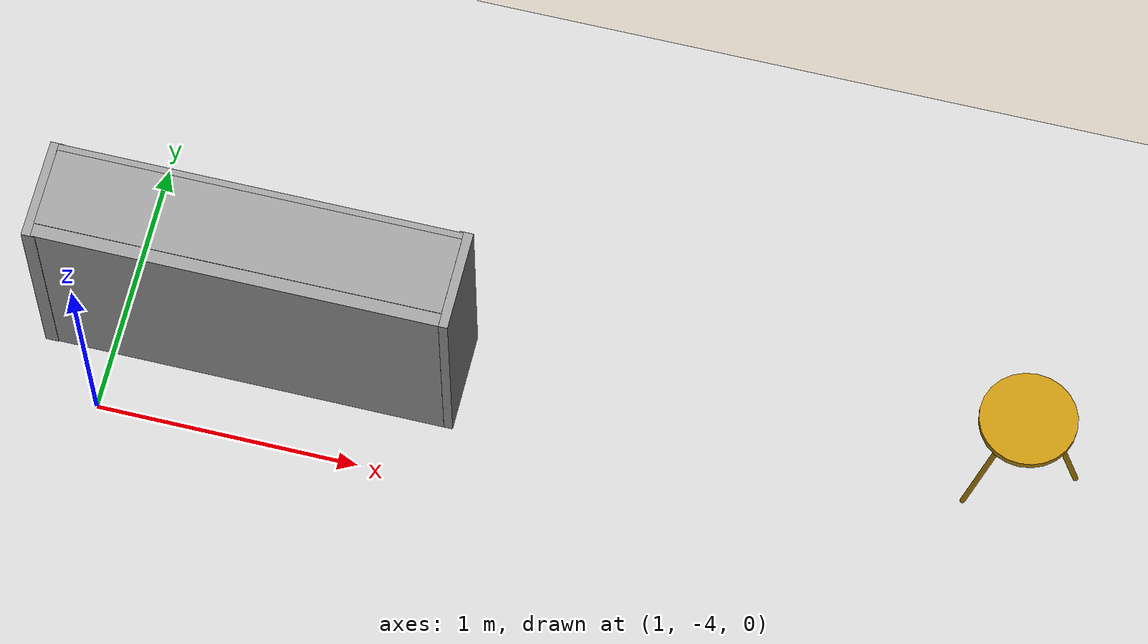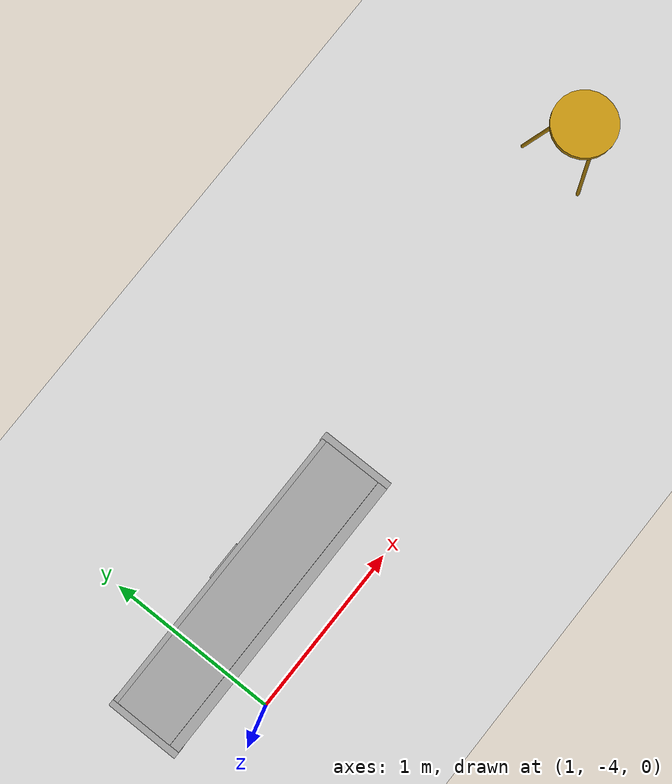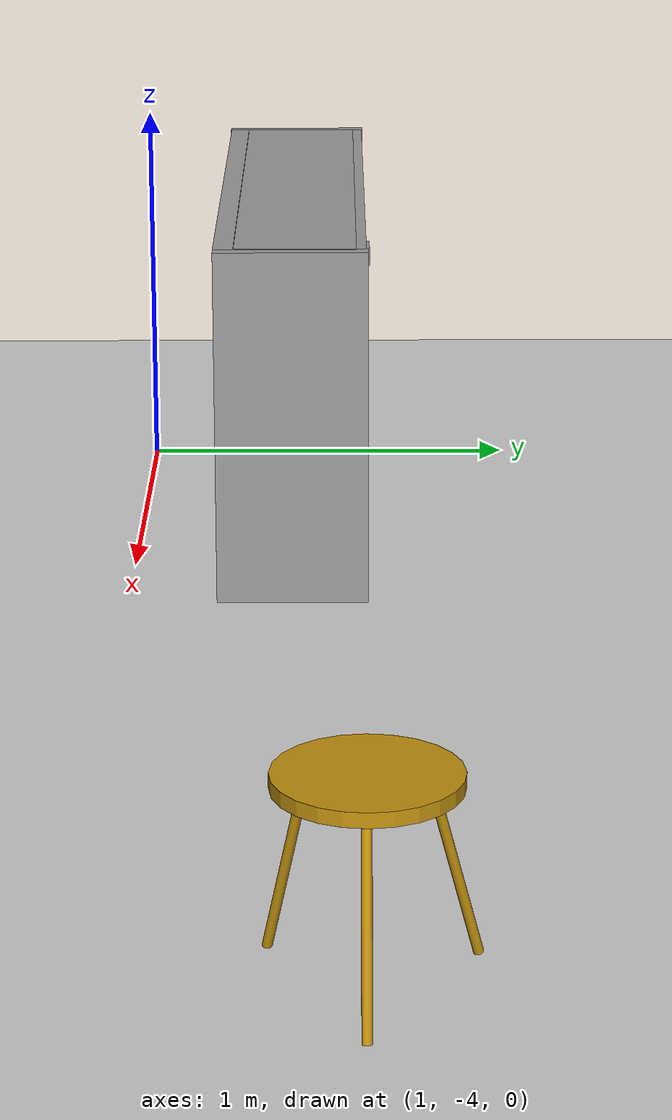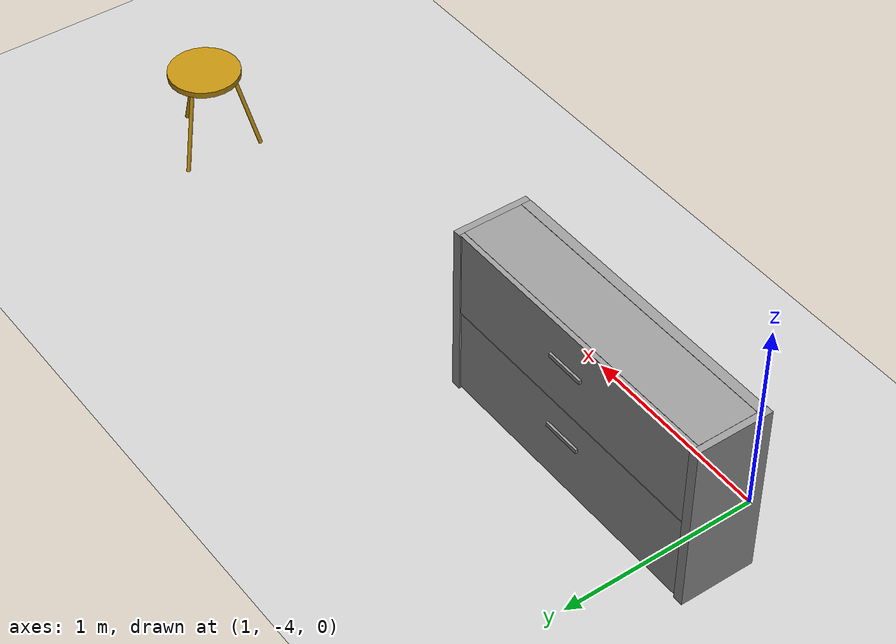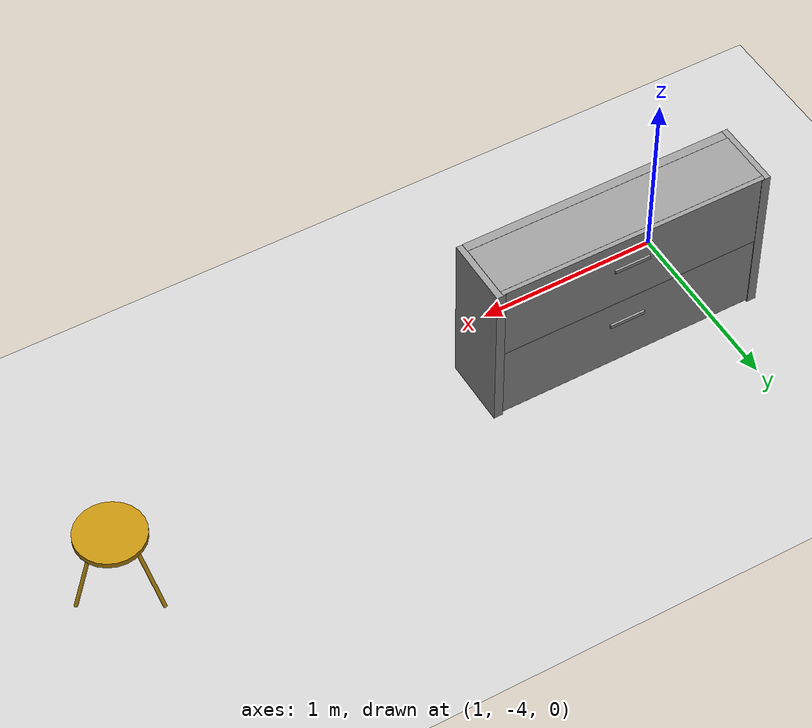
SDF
<sdf version="1.7">
 <world name="default">
  <model name="ground_plane">
   <static>1</static>
   <link name="link">
    <collision name="collision">
     <geometry><plane><normal>0 0 1</normal><size>100 100</size></plane></geometry>
     <surface>
      <contact><collide_bitmask>65535</collide_bitmask></contact>
      <friction><ode><mu>100</mu><mu2>50</mu2></ode></friction>
     </surface>
    </collision>
    <visual name="visual">
     <cast_shadows>0</cast_shadows>
     <geometry><plane><normal>0 0 1</normal><size>100 100</size></plane></geometry>
     <material>
      <script><uri>file://media/materials/scripts/gazebo.material</uri><name>Gazebo/Grey</name></script>
     </material>
    </visual>
   </link>
  </model>
  <model name="my_stool">
   <link name="link">
    <inertial>
     <mass>1</mass>
     <inertia><ixx>0.145833</ixx><ixy>0</ixy><ixz>0</ixz><iyy>0.145833</iyy><iyz>0</iyz><izz>0.125</izz></inertia>
    </inertial>
    <gravity>0</gravity>
    <visual name="visual">
     <geometry><cylinder><radius>0.18</radius><length>0.03</length></cylinder></geometry>
     <material>
      <script><name>Gazebo/Grey</name><uri>file://media/materials/scripts/gazebo.material</uri></script>
      <shader type="pixel"><normal_map>__default__</normal_map></shader>
      <ambient>0.75 0.56 0.05 1</ambient>
      <diffuse>0.75 0.56 0.05 1</diffuse>
      <specular>0.01 0.01 0.01 1</specular>
      <emissive>0 0 0 1</emissive>
     </material>
     <pose>0 0 0.42 0 -0 0</pose>
    </visual>
    <collision name="collision">
     <pose>0 0 0.42 0 -0 0</pose>
     <geometry><cylinder><radius>0.18</radius><length>0.03</length></cylinder></geometry>
     <surface>
      <friction>
       <ode><mu>1</mu><mu2>1</mu2><fdir1>0 0 0</fdir1><slip1>0</slip1><slip2>0</slip2></ode>
       <torsional>
        <coefficient>1</coefficient>
        <patch_radius>0</patch_radius>
        <surface_radius>0</surface_radius>
        <use_patch_radius>1</use_patch_radius>
        <ode><slip>0</slip></ode>
       </torsional>
      </friction>
      <bounce><restitution_coefficient>0</restitution_coefficient><threshold>1e+06</threshold></bounce>
      <contact>
       <collide_without_contact>0</collide_without_contact>
       <collide_without_contact_bitmask>1</collide_without_contact_bitmask>
       <collide_bitmask>1</collide_bitmask>
       <ode>
        <soft_cfm>0</soft_cfm>
        <soft_erp>0.2</soft_erp>
        <kp>1e+13</kp>
        <kd>1</kd>
        <max_vel>0.01</max_vel>
        <min_depth>0</min_depth>
       </ode>
       <bullet>
        <split_impulse>1</split_impulse>
        <split_impulse_penetration_threshold>-0.01</split_impulse_penetration_threshold>
        <soft_cfm>0</soft_cfm>
        <soft_erp>0.2</soft_erp>
        <kp>1e+13</kp>
        <kd>1</kd>
       </bullet>
      </contact>
     </surface>
    </collision>
   </link>
   <link name="link_clone">
    <inertial>
     <mass>1</mass>
     <inertia><ixx>0.145833</ixx><ixy>0</ixy><ixz>0</ixz><iyy>0.145833</iyy><iyz>0</iyz><izz>0.125</izz></inertia>
    </inertial>
    <pose>0.154365 -0.002852 0.007514 0 -0 0</pose>
    <gravity>0</gravity>
    <visual name="visual">
     <geometry><cylinder><radius>0.01</radius><length>0.42</length></cylinder></geometry>
     <material>
      <script><name>Gazebo/Grey</name><uri>file://media/materials/scripts/gazebo.material</uri></script>
      <shader type="pixel"><normal_map>__default__</normal_map></shader>
      <ambient>0.75 0.56 0.05 1</ambient>
      <diffuse>0.75 0.56 0.05 1</diffuse>
      <specular>0.01 0.01 0.01 1</specular>
      <emissive>0 0 0 1</emissive>
     </material>
     <pose>0 0 0.196 0 -0.3 0</pose>
    </visual>
    <collision name="collision">
     <pose>0 0 0.196 0 -0.3 0</pose>
     <geometry><cylinder><radius>0.01</radius><length>0.42</length></cylinder></geometry>
     <surface>
      <friction>
       <ode><mu>1</mu><mu2>1</mu2><fdir1>0 0 0</fdir1><slip1>0</slip1><slip2>0</slip2></ode>
       <torsional>
        <coefficient>1</coefficient>
        <patch_radius>0</patch_radius>
        <surface_radius>0</surface_radius>
        <use_patch_radius>1</use_patch_radius>
        <ode><slip>0</slip></ode>
       </torsional>
      </friction>
      <bounce><restitution_coefficient>0</restitution_coefficient><threshold>1e+06</threshold></bounce>
      <contact>
       <collide_without_contact>0</collide_without_contact>
       <collide_without_contact_bitmask>1</collide_without_contact_bitmask>
       <collide_bitmask>1</collide_bitmask>
       <ode>
        <soft_cfm>0</soft_cfm>
        <soft_erp>0.2</soft_erp>
        <kp>1e+13</kp>
        <kd>1</kd>
        <max_vel>0.01</max_vel>
        <min_depth>0</min_depth>
       </ode>
       <bullet>
        <split_impulse>1</split_impulse>
        <split_impulse_penetration_threshold>-0.01</split_impulse_penetration_threshold>
        <soft_cfm>0</soft_cfm>
        <soft_erp>0.2</soft_erp>
        <kp>1e+13</kp>
        <kd>1</kd>
       </bullet>
      </contact>
     </surface>
    </collision>
   </link>
   <link name="link_clone_clone">
    <inertial>
     <mass>1</mass>
     <inertia><ixx>0.145833</ixx><ixy>0</ixy><ixz>0</ixz><iyy>0.145833</iyy><iyz>0</iyz><izz>0.125</izz></inertia>
    </inertial>
    <pose>-0.108427 0.162559 0.007514 0 -0 2.21012</pose>
    <gravity>0</gravity>
    <visual name="visual">
     <geometry><cylinder><radius>0.01</radius><length>0.42</length></cylinder></geometry>
     <material>
      <script><name>Gazebo/Grey</name><uri>file://media/materials/scripts/gazebo.material</uri></script>
      <shader type="pixel"><normal_map>__default__</normal_map></shader>
      <ambient>0.75 0.56 0.05 1</ambient>
      <diffuse>0.75 0.56 0.05 1</diffuse>
      <specular>0.01 0.01 0.01 1</specular>
      <emissive>0 0 0 1</emissive>
     </material>
     <pose>0 0 0.196 0 -0.3 0</pose>
    </visual>
    <collision name="collision">
     <pose>0 0 0.14 0 -0.3 0</pose>
     <geometry><cylinder><radius>0.01</radius><length>0.42</length></cylinder></geometry>
     <surface>
      <friction>
       <ode><mu>1</mu><mu2>1</mu2><fdir1>0 0 0</fdir1><slip1>0</slip1><slip2>0</slip2></ode>
       <torsional>
        <coefficient>1</coefficient>
        <patch_radius>0</patch_radius>
        <surface_radius>0</surface_radius>
        <use_patch_radius>1</use_patch_radius>
        <ode><slip>0</slip></ode>
       </torsional>
      </friction>
      <bounce><restitution_coefficient>0</restitution_coefficient><threshold>1e+06</threshold></bounce>
      <contact>
       <collide_without_contact>0</collide_without_contact>
       <collide_without_contact_bitmask>1</collide_without_contact_bitmask>
       <collide_bitmask>1</collide_bitmask>
       <ode>
        <soft_cfm>0</soft_cfm>
        <soft_erp>0.2</soft_erp>
        <kp>1e+13</kp>
        <kd>1</kd>
        <max_vel>0.01</max_vel>
        <min_depth>0</min_depth>
       </ode>
       <bullet>
        <split_impulse>1</split_impulse>
        <split_impulse_penetration_threshold>-0.01</split_impulse_penetration_threshold>
        <soft_cfm>0</soft_cfm>
        <soft_erp>0.2</soft_erp>
        <kp>1e+13</kp>
        <kd>1</kd>
       </bullet>
      </contact>
     </surface>
    </collision>
   </link>
   <link name="link_clone_clone_clone">
    <inertial>
     <mass>1</mass>
     <inertia><ixx>0.145833</ixx><ixy>0</ixy><ixz>0</ixz><iyy>0.145833</iyy><iyz>0</iyz><izz>0.125</izz></inertia>
    </inertial>
    <pose>-0.123134 -0.149725 0.010416 0 0 -2.45292</pose>
    <visual name="visual">
     <geometry><cylinder><radius>0.01</radius><length>0.42</length></cylinder></geometry>
     <material>
      <script><name>Gazebo/Grey</name><uri>file://media/materials/scripts/gazebo.material</uri></script>
      <shader type="pixel"><normal_map>__default__</normal_map></shader>
      <ambient>0.75 0.56 0.05 1</ambient>
      <diffuse>0.75 0.56 0.05 1</diffuse>
      <specular>0.01 0.01 0.01 1</specular>
      <emissive>0 0 0 1</emissive>
     </material>
     <pose>0 0 0.196 0 -0.3 0</pose>
    </visual>
    <collision name="collision">
     <pose>0 0 0.196 0 -0.3 0</pose>
     <geometry><cylinder><radius>0.01</radius><length>0.42</length></cylinder></geometry>
     <surface>
      <friction>
       <ode><mu>1</mu><mu2>1</mu2><fdir1>0 0 0</fdir1><slip1>0</slip1><slip2>0</slip2></ode>
       <torsional>
        <coefficient>1</coefficient>
        <patch_radius>0</patch_radius>
        <surface_radius>0</surface_radius>
        <use_patch_radius>1</use_patch_radius>
        <ode><slip>0</slip></ode>
       </torsional>
      </friction>
      <bounce><restitution_coefficient>0</restitution_coefficient><threshold>1e+06</threshold></bounce>
      <contact>
       <collide_without_contact>0</collide_without_contact>
       <collide_without_contact_bitmask>1</collide_without_contact_bitmask>
       <collide_bitmask>1</collide_bitmask>
       <ode>
        <soft_cfm>0</soft_cfm>
        <soft_erp>0.2</soft_erp>
        <kp>1e+13</kp>
        <kd>1</kd>
        <max_vel>0.01</max_vel>
        <min_depth>0</min_depth>
       </ode>
       <bullet>
        <split_impulse>1</split_impulse>
        <split_impulse_penetration_threshold>-0.01</split_impulse_penetration_threshold>
        <soft_cfm>0</soft_cfm>
        <soft_erp>0.2</soft_erp>
        <kp>1e+13</kp>
        <kd>1</kd>
       </bullet>
      </contact>
     </surface>
    </collision>
   </link>
   <static>1</static>
   <pose>4.36955 -3.42221 0 0 -0 0</pose>
  </model>
  <model name="my_shoe_rack">
   <link name="link">
    <inertial>
     <mass>1</mass>
     <inertia>
      <ixx>0.166667</ixx>
      <ixy>0</ixy>
      <ixz>0</ixz>
      <iyy>0.166667</iyy>
      <iyz>0</iyz>
      <izz>0.166667</izz>
     </inertia>
    </inertial>
    <pose>0.010503 -0.018536 0.006993 0 -0 0</pose>
    <visual name="visual">
     <geometry><box><size>0.05 1.5 0.9</size></box></geometry>
     <material>
      <script><name>Gazebo/Grey</name><uri>file://media/materials/scripts/gazebo.material</uri></script>
      <shader type="pixel"><normal_map>__default__</normal_map></shader>
      <ambient>0.9 0.9 0.9 1</ambient>
      <diffuse>0.9 0.9 0.9 1</diffuse>
      <specular>0.01 0.01 0.01 1</specular>
      <emissive>0 0 0 1</emissive>
     </material>
     <pose>0 0 0.45 0 -0 0</pose>
    </visual>
    <collision name="collision">
     <pose>0 0 0.45 0 -0 0</pose>
     <geometry><box><size>0.05 1.5 0.9</size></box></geometry>
     <surface>
      <friction>
       <ode><mu>1</mu><mu2>1</mu2><fdir1>0 0 0</fdir1><slip1>0</slip1><slip2>0</slip2></ode>
       <torsional>
        <coefficient>1</coefficient>
        <patch_radius>0</patch_radius>
        <surface_radius>0</surface_radius>
        <use_patch_radius>1</use_patch_radius>
        <ode><slip>0</slip></ode>
       </torsional>
      </friction>
      <bounce><restitution_coefficient>0</restitution_coefficient><threshold>1e+06</threshold></bounce>
      <contact>
       <collide_without_contact>0</collide_without_contact>
       <collide_without_contact_bitmask>1</collide_without_contact_bitmask>
       <collide_bitmask>1</collide_bitmask>
       <ode>
        <soft_cfm>0</soft_cfm>
        <soft_erp>0.2</soft_erp>
        <kp>1e+13</kp>
        <kd>1</kd>
        <max_vel>0.01</max_vel>
        <min_depth>0</min_depth>
       </ode>
       <bullet>
        <split_impulse>1</split_impulse>
        <split_impulse_penetration_threshold>-0.01</split_impulse_penetration_threshold>
        <soft_cfm>0</soft_cfm>
        <soft_erp>0.2</soft_erp>
        <kp>1e+13</kp>
        <kd>1</kd>
       </bullet>
      </contact>
     </surface>
    </collision>
   </link>
   <link name="link_0">
    <inertial>
     <mass>1</mass>
     <inertia>
      <ixx>0.166667</ixx>
      <ixy>0</ixy>
      <ixz>0</ixz>
      <iyy>0.166667</iyy>
      <iyz>0</iyz>
      <izz>0.166667</izz>
     </inertia>
    </inertial>
    <pose>0.371318 -0.032823 0.721817 0 -0 0</pose>
    <gravity>0</gravity>
    <visual name="visual">
     <geometry><box><size>0.012 0.2 0.02</size></box></geometry>
     <material>
      <lighting>1</lighting>
      <script><uri>file://media/materials/scripts/gazebo.material</uri><name>Gazebo/Grey</name></script>
      <shader type="pixel"><normal_map>__default__</normal_map></shader>
      <ambient>0.2 0.2 0.2 0</ambient>
      <diffuse>0.2 0.2 0.2 1</diffuse>
      <specular>0.01 0.01 0.01 1</specular>
      <emissive>0 0 0 1</emissive>
     </material>
    </visual>
    <collision name="collision">
     <geometry><box><size>0.012 0.2 0.02</size></box></geometry>
     <surface>
      <friction>
       <ode><mu>1</mu><mu2>1</mu2><fdir1>0 0 0</fdir1><slip1>0</slip1><slip2>0</slip2></ode>
       <torsional>
        <coefficient>1</coefficient>
        <patch_radius>0</patch_radius>
        <surface_radius>0</surface_radius>
        <use_patch_radius>1</use_patch_radius>
        <ode><slip>0</slip></ode>
       </torsional>
      </friction>
      <bounce><restitution_coefficient>0</restitution_coefficient><threshold>1e+06</threshold></bounce>
      <contact>
       <collide_without_contact>0</collide_without_contact>
       <collide_without_contact_bitmask>1</collide_without_contact_bitmask>
       <collide_bitmask>1</collide_bitmask>
       <ode>
        <soft_cfm>0</soft_cfm>
        <soft_erp>0.2</soft_erp>
        <kp>1e+13</kp>
        <kd>1</kd>
        <max_vel>0.01</max_vel>
        <min_depth>0</min_depth>
       </ode>
       <bullet>
        <split_impulse>1</split_impulse>
        <split_impulse_penetration_threshold>-0.01</split_impulse_penetration_threshold>
        <soft_cfm>0</soft_cfm>
        <soft_erp>0.2</soft_erp>
        <kp>1e+13</kp>
        <kd>1</kd>
       </bullet>
      </contact>
     </surface>
    </collision>
   </link>
   <link name="link_0_clone">
    <inertial>
     <mass>1</mass>
     <inertia>
      <ixx>0.166667</ixx>
      <ixy>0</ixy>
      <ixz>0</ixz>
      <iyy>0.166667</iyy>
      <iyz>0</iyz>
      <izz>0.166667</izz>
     </inertia>
    </inertial>
    <pose>0.366781 -0.03449 0.310512 0 -0 0</pose>
    <gravity>0</gravity>
    <visual name="visual">
     <geometry><box><size>0.012 0.2 0.02</size></box></geometry>
     <material>
      <lighting>1</lighting>
      <script><uri>file://media/materials/scripts/gazebo.material</uri><name>Gazebo/Grey</name></script>
      <shader type="pixel"><normal_map>__default__</normal_map></shader>
      <ambient>0.2 0.2 0.2 0</ambient>
      <diffuse>0.2 0.2 0.2 1</diffuse>
      <specular>0.01 0.01 0.01 1</specular>
      <emissive>0 0 0 1</emissive>
     </material>
    </visual>
    <collision name="collision">
     <geometry><box><size>0.012 0.2 0.02</size></box></geometry>
     <surface>
      <friction>
       <ode><mu>1</mu><mu2>1</mu2><fdir1>0 0 0</fdir1><slip1>0</slip1><slip2>0</slip2></ode>
       <torsional>
        <coefficient>1</coefficient>
        <patch_radius>0</patch_radius>
        <surface_radius>0</surface_radius>
        <use_patch_radius>1</use_patch_radius>
        <ode><slip>0</slip></ode>
       </torsional>
      </friction>
      <bounce><restitution_coefficient>0</restitution_coefficient><threshold>1e+06</threshold></bounce>
      <contact>
       <collide_without_contact>0</collide_without_contact>
       <collide_without_contact_bitmask>1</collide_without_contact_bitmask>
       <collide_bitmask>1</collide_bitmask>
       <ode>
        <soft_cfm>0</soft_cfm>
        <soft_erp>0.2</soft_erp>
        <kp>1e+13</kp>
        <kd>1</kd>
        <max_vel>0.01</max_vel>
        <min_depth>0</min_depth>
       </ode>
       <bullet>
        <split_impulse>1</split_impulse>
        <split_impulse_penetration_threshold>-0.01</split_impulse_penetration_threshold>
        <soft_cfm>0</soft_cfm>
        <soft_erp>0.2</soft_erp>
        <kp>1e+13</kp>
        <kd>1</kd>
       </bullet>
      </contact>
     </surface>
    </collision>
   </link>
   <link name="link_clone">
    <inertial>
     <mass>1</mass>
     <inertia>
      <ixx>0.166667</ixx>
      <ixy>0</ixy>
      <ixz>0</ixz>
      <iyy>0.166667</iyy>
      <iyz>0</iyz>
      <izz>0.166667</izz>
     </inertia>
    </inertial>
    <pose>0.199559 -0.011174 -1.077 1.1e-05 -0.001065 2e-06</pose>
    <visual name="visual">
     <geometry><box><size>0.3 1.5 0.04</size></box></geometry>
     <material>
      <script><name>Gazebo/Grey</name><uri>file://media/materials/scripts/gazebo.material</uri></script>
      <shader type="pixel"><normal_map>__default__</normal_map></shader>
      <ambient>0.9 0.9 0.9 1</ambient>
      <diffuse>0.9 0.9 0.9 1</diffuse>
      <specular>0.01 0.01 0.01 1</specular>
      <emissive>0 0 0 1</emissive>
     </material>
     <pose>0 0 1.1 0 -0 0</pose>
    </visual>
    <collision name="collision">
     <pose>0 0 1.1 0 -0 0</pose>
     <geometry><box><size>0.3 1.5 0.04</size></box></geometry>
     <surface>
      <friction>
       <ode><mu>1</mu><mu2>1</mu2><fdir1>0 0 0</fdir1><slip1>0</slip1><slip2>0</slip2></ode>
       <torsional>
        <coefficient>1</coefficient>
        <patch_radius>0</patch_radius>
        <surface_radius>0</surface_radius>
        <use_patch_radius>1</use_patch_radius>
        <ode><slip>0</slip></ode>
       </torsional>
      </friction>
      <bounce><restitution_coefficient>0</restitution_coefficient><threshold>1e+06</threshold></bounce>
      <contact>
       <collide_without_contact>0</collide_without_contact>
       <collide_without_contact_bitmask>1</collide_without_contact_bitmask>
       <collide_bitmask>1</collide_bitmask>
       <ode>
        <soft_cfm>0</soft_cfm>
        <soft_erp>0.2</soft_erp>
        <kp>1e+13</kp>
        <kd>1</kd>
        <max_vel>0.01</max_vel>
        <min_depth>0</min_depth>
       </ode>
       <bullet>
        <split_impulse>1</split_impulse>
        <split_impulse_penetration_threshold>-0.01</split_impulse_penetration_threshold>
        <soft_cfm>0</soft_cfm>
        <soft_erp>0.2</soft_erp>
        <kp>1e+13</kp>
        <kd>1</kd>
       </bullet>
      </contact>
     </surface>
    </collision>
   </link>
   <link name="link_clone_0">
    <inertial>
     <mass>1</mass>
     <inertia>
      <ixx>0.166667</ixx>
      <ixy>0</ixy>
      <ixz>0</ixz>
      <iyy>0.166667</iyy>
      <iyz>0</iyz>
      <izz>0.166667</izz>
     </inertia>
    </inertial>
    <pose>0.1762 -0.777121 0.006003 0 -0 0</pose>
    <gravity>0</gravity>
    <visual name="visual">
     <geometry><box><size>0.05 0.38 0.9</size></box></geometry>
     <material>
      <script><name>Gazebo/Grey</name><uri>file://media/materials/scripts/gazebo.material</uri></script>
      <shader type="pixel"><normal_map>__default__</normal_map></shader>
      <ambient>0.9 0.9 0.9 1</ambient>
      <diffuse>0.9 0.9 0.9 1</diffuse>
      <specular>0.01 0.01 0.01 1</specular>
      <emissive>0 0 0 1</emissive>
     </material>
     <pose>0 0 0.45 0 -0 1.5707</pose>
    </visual>
    <collision name="collision">
     <pose>0 0 0.45 0 -0 1.5707</pose>
     <geometry><box><size>0.05 0.38 0.9</size></box></geometry>
     <surface>
      <friction>
       <ode><mu>1</mu><mu2>1</mu2><fdir1>0 0 0</fdir1><slip1>0</slip1><slip2>0</slip2></ode>
       <torsional>
        <coefficient>1</coefficient>
        <patch_radius>0</patch_radius>
        <surface_radius>0</surface_radius>
        <use_patch_radius>1</use_patch_radius>
        <ode><slip>0</slip></ode>
       </torsional>
      </friction>
      <bounce><restitution_coefficient>0</restitution_coefficient><threshold>1e+06</threshold></bounce>
      <contact>
       <collide_without_contact>0</collide_without_contact>
       <collide_without_contact_bitmask>1</collide_without_contact_bitmask>
       <collide_bitmask>1</collide_bitmask>
       <ode>
        <soft_cfm>0</soft_cfm>
        <soft_erp>0.2</soft_erp>
        <kp>1e+13</kp>
        <kd>1</kd>
        <max_vel>0.01</max_vel>
        <min_depth>0</min_depth>
       </ode>
       <bullet>
        <split_impulse>1</split_impulse>
        <split_impulse_penetration_threshold>-0.01</split_impulse_penetration_threshold>
        <soft_cfm>0</soft_cfm>
        <soft_erp>0.2</soft_erp>
        <kp>1e+13</kp>
        <kd>1</kd>
       </bullet>
      </contact>
     </surface>
    </collision>
   </link>
   <link name="link_clone_0_clone">
    <inertial>
     <mass>1</mass>
     <inertia>
      <ixx>0.166667</ixx>
      <ixy>0</ixy>
      <ixz>0</ixz>
      <iyy>0.166667</iyy>
      <iyz>0</iyz>
      <izz>0.166667</izz>
     </inertia>
    </inertial>
    <pose>0.173251 0.740189 0.006003 0 -0 0</pose>
    <gravity>0</gravity>
    <visual name="visual">
     <geometry><box><size>0.05 0.38 0.9</size></box></geometry>
     <material>
      <script><name>Gazebo/Grey</name><uri>file://media/materials/scripts/gazebo.material</uri></script>
      <shader type="pixel"><normal_map>__default__</normal_map></shader>
      <ambient>0.9 0.9 0.9 1</ambient>
      <diffuse>0.9 0.9 0.9 1</diffuse>
      <specular>0.01 0.01 0.01 1</specular>
      <emissive>0 0 0 1</emissive>
     </material>
     <pose>0 0 0.45 0 -0 1.5707</pose>
    </visual>
    <collision name="collision">
     <pose>0 0 0.45 0 -0 1.5707</pose>
     <geometry><box><size>0.05 0.38 0.9</size></box></geometry>
     <surface>
      <friction>
       <ode><mu>1</mu><mu2>1</mu2><fdir1>0 0 0</fdir1><slip1>0</slip1><slip2>0</slip2></ode>
       <torsional>
        <coefficient>1</coefficient>
        <patch_radius>0</patch_radius>
        <surface_radius>0</surface_radius>
        <use_patch_radius>1</use_patch_radius>
        <ode><slip>0</slip></ode>
       </torsional>
      </friction>
      <bounce><restitution_coefficient>0</restitution_coefficient><threshold>1e+06</threshold></bounce>
      <contact>
       <collide_without_contact>0</collide_without_contact>
       <collide_without_contact_bitmask>1</collide_without_contact_bitmask>
       <collide_bitmask>1</collide_bitmask>
       <ode>
        <soft_cfm>0</soft_cfm>
        <soft_erp>0.2</soft_erp>
        <kp>1e+13</kp>
        <kd>1</kd>
        <max_vel>0.01</max_vel>
        <min_depth>0</min_depth>
       </ode>
       <bullet>
        <split_impulse>1</split_impulse>
        <split_impulse_penetration_threshold>-0.01</split_impulse_penetration_threshold>
        <soft_cfm>0</soft_cfm>
        <soft_erp>0.2</soft_erp>
        <kp>1e+13</kp>
        <kd>1</kd>
       </bullet>
      </contact>
     </surface>
    </collision>
   </link>
   <link name="link_clone_1">
    <inertial>
     <mass>1</mass>
     <inertia>
      <ixx>0.166667</ixx>
      <ixy>0</ixy>
      <ixz>0</ixz>
      <iyy>0.166667</iyy>
      <iyz>0</iyz>
      <izz>0.166667</izz>
     </inertia>
    </inertial>
    <pose>0.333404 -0.016712 -0.211075 0 -0 0</pose>
    <gravity>0</gravity>
    <visual name="visual">
     <geometry><box><size>0.05 1.5 0.44</size></box></geometry>
     <material>
      <script><name>Gazebo/Grey</name><uri>file://media/materials/scripts/gazebo.material</uri></script>
      <shader type="pixel"><normal_map>__default__</normal_map></shader>
      <ambient>0.9 0.9 0.9 1</ambient>
      <diffuse>0.9 0.9 0.9 1</diffuse>
      <specular>0.01 0.01 0.01 1</specular>
      <emissive>0 0 0 1</emissive>
     </material>
     <pose>0 0 0.45 0 -0 0</pose>
    </visual>
    <collision name="collision">
     <pose>0 0 0.45 0 -0 0</pose>
     <geometry><box><size>0.05 1.5 0.44</size></box></geometry>
     <surface>
      <friction>
       <ode><mu>1</mu><mu2>1</mu2><fdir1>0 0 0</fdir1><slip1>0</slip1><slip2>0</slip2></ode>
       <torsional>
        <coefficient>1</coefficient>
        <patch_radius>0</patch_radius>
        <surface_radius>0</surface_radius>
        <use_patch_radius>1</use_patch_radius>
        <ode><slip>0</slip></ode>
       </torsional>
      </friction>
      <bounce><restitution_coefficient>0</restitution_coefficient><threshold>1e+06</threshold></bounce>
      <contact>
       <collide_without_contact>0</collide_without_contact>
       <collide_without_contact_bitmask>1</collide_without_contact_bitmask>
       <collide_bitmask>1</collide_bitmask>
       <ode>
        <soft_cfm>0</soft_cfm>
        <soft_erp>0.2</soft_erp>
        <kp>1e+13</kp>
        <kd>1</kd>
        <max_vel>0.01</max_vel>
        <min_depth>0</min_depth>
       </ode>
       <bullet>
        <split_impulse>1</split_impulse>
        <split_impulse_penetration_threshold>-0.01</split_impulse_penetration_threshold>
        <soft_cfm>0</soft_cfm>
        <soft_erp>0.2</soft_erp>
        <kp>1e+13</kp>
        <kd>1</kd>
       </bullet>
      </contact>
     </surface>
    </collision>
   </link>
   <link name="link_clone_1_clone">
    <inertial>
     <mass>1</mass>
     <inertia>
      <ixx>0.166667</ixx>
      <ixy>0</ixy>
      <ixz>0</ixz>
      <iyy>0.166667</iyy>
      <iyz>0</iyz>
      <izz>0.166667</izz>
     </inertia>
    </inertial>
    <pose>0.336083 -0.01614 0.236525 0 -0 0</pose>
    <gravity>0</gravity>
    <visual name="visual">
     <geometry><box><size>0.05 1.5 0.44</size></box></geometry>
     <material>
      <script><name>Gazebo/Grey</name><uri>file://media/materials/scripts/gazebo.material</uri></script>
      <shader type="pixel"><normal_map>__default__</normal_map></shader>
      <ambient>0.9 0.9 0.9 1</ambient>
      <diffuse>0.9 0.9 0.9 1</diffuse>
      <specular>0.01 0.01 0.01 1</specular>
      <emissive>0 0 0 1</emissive>
     </material>
     <pose>0 0 0.45 0 -0 0</pose>
    </visual>
    <collision name="collision">
     <pose>0 0 0.45 0 -0 0</pose>
     <geometry><box><size>0.05 1.5 0.44</size></box></geometry>
     <surface>
      <friction>
       <ode><mu>1</mu><mu2>1</mu2><fdir1>0 0 0</fdir1><slip1>0</slip1><slip2>0</slip2></ode>
       <torsional>
        <coefficient>1</coefficient>
        <patch_radius>0</patch_radius>
        <surface_radius>0</surface_radius>
        <use_patch_radius>1</use_patch_radius>
        <ode><slip>0</slip></ode>
       </torsional>
      </friction>
      <bounce><restitution_coefficient>0</restitution_coefficient><threshold>1e+06</threshold></bounce>
      <contact>
       <collide_without_contact>0</collide_without_contact>
       <collide_without_contact_bitmask>1</collide_without_contact_bitmask>
       <collide_bitmask>1</collide_bitmask>
       <ode>
        <soft_cfm>0</soft_cfm>
        <soft_erp>0.2</soft_erp>
        <kp>1e+13</kp>
        <kd>1</kd>
        <max_vel>0.01</max_vel>
        <min_depth>0</min_depth>
       </ode>
       <bullet>
        <split_impulse>1</split_impulse>
        <split_impulse_penetration_threshold>-0.01</split_impulse_penetration_threshold>
        <soft_cfm>0</soft_cfm>
        <soft_erp>0.2</soft_erp>
        <kp>1e+13</kp>
        <kd>1</kd>
       </bullet>
      </contact>
     </surface>
    </collision>
   </link>
   <link name="link_clone_clone_0">
    <inertial>
     <mass>1</mass>
     <inertia>
      <ixx>0.166667</ixx>
      <ixy>0</ixy>
      <ixz>0</ixz>
      <iyy>0.166667</iyy>
      <iyz>0</iyz>
      <izz>0.166667</izz>
     </inertia>
    </inertial>
    <pose>0.186363 -0.017339 0.93719 2.2e-05 0.000604 0.000114</pose>
    <gravity>0</gravity>
    <visual name="visual">
     <geometry><box><size>0.3 1.5 0.04</size></box></geometry>
     <material>
      <script><name>Gazebo/Grey</name><uri>file://media/materials/scripts/gazebo.material</uri></script>
      <shader type="pixel"><normal_map>__default__</normal_map></shader>
      <ambient>0.9 0.9 0.9 1</ambient>
      <diffuse>0.9 0.9 0.9 1</diffuse>
      <specular>0.01 0.01 0.01 1</specular>
      <emissive>0 0 0 1</emissive>
     </material>
     <pose>0 0 -0.05 0 -0 0</pose>
    </visual>
    <collision name="collision">
     <pose>0 0 -0.05 0 -0 0</pose>
     <geometry><box><size>0.3 1.5 0.04</size></box></geometry>
     <surface>
      <friction>
       <ode><mu>1</mu><mu2>1</mu2><fdir1>0 0 0</fdir1><slip1>0</slip1><slip2>0</slip2></ode>
       <torsional>
        <coefficient>1</coefficient>
        <patch_radius>0</patch_radius>
        <surface_radius>0</surface_radius>
        <use_patch_radius>1</use_patch_radius>
        <ode><slip>0</slip></ode>
       </torsional>
      </friction>
      <bounce><restitution_coefficient>0</restitution_coefficient><threshold>1e+06</threshold></bounce>
      <contact>
       <collide_without_contact>0</collide_without_contact>
       <collide_without_contact_bitmask>1</collide_without_contact_bitmask>
       <collide_bitmask>1</collide_bitmask>
       <ode>
        <soft_cfm>0</soft_cfm>
        <soft_erp>0.2</soft_erp>
        <kp>1e+13</kp>
        <kd>1</kd>
        <max_vel>0.01</max_vel>
        <min_depth>0</min_depth>
       </ode>
       <bullet>
        <split_impulse>1</split_impulse>
        <split_impulse_penetration_threshold>-0.01</split_impulse_penetration_threshold>
        <soft_cfm>0</soft_cfm>
        <soft_erp>0.2</soft_erp>
        <kp>1e+13</kp>
        <kd>1</kd>
       </bullet>
      </contact>
     </surface>
    </collision>
   </link>
   <static>1</static>
   <pose>1.50374 -3.76363 -0 0 -0 1.5708</pose>
  </model>
 </world>
</sdf>
